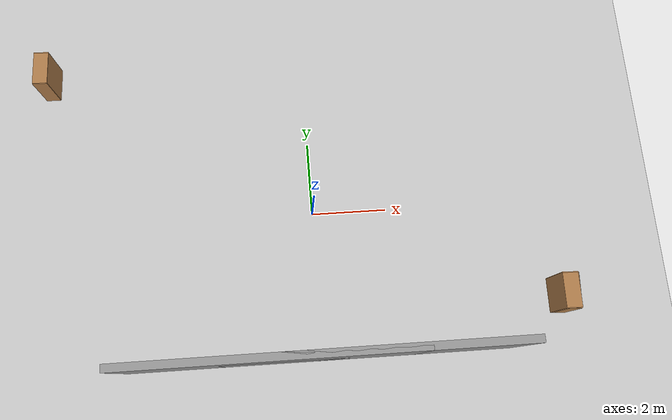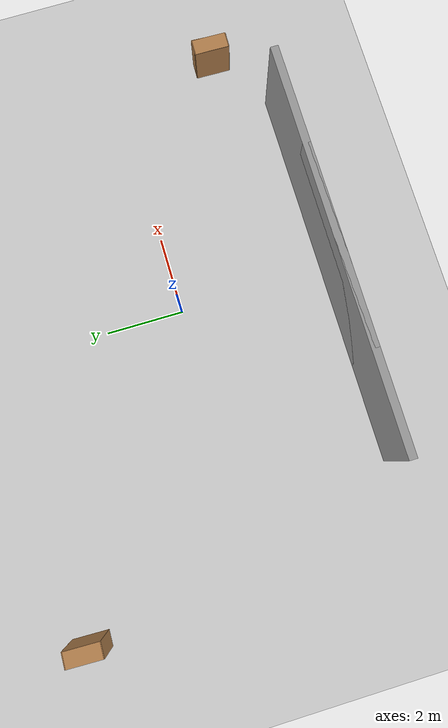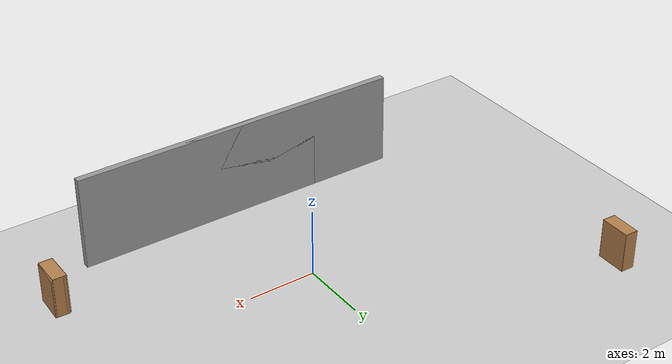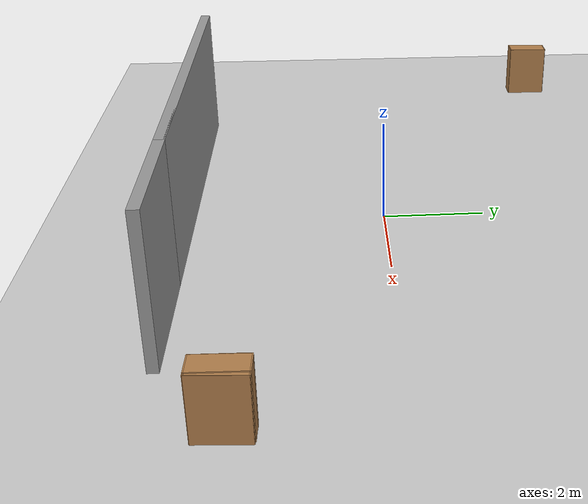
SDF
<sdf version="1.6">
 <world name="default">
  <light name="sun" type="directional">
   <pose>0 0 10 0 -0 0</pose>
   <diffuse>0.8 0.8 0.8 1</diffuse>
   <specular>0.2 0.2 0.2 1</specular>
   <attenuation>
    <range>1000</range>
    <constant>0.9</constant>
    <linear>0.01</linear>
    <quadratic>0.001</quadratic>
   </attenuation>
   <direction>-0.5 0.1 -0.9</direction>
  </light>
  <model name="ground_plane">
   <static>1</static>
   <link name="link">
    <collision name="collision">
     <geometry><plane><normal>0 0 1</normal><size>100 100</size></plane></geometry>
     <surface>
      <contact><collide_bitmask>65535</collide_bitmask></contact>
      <friction><ode><mu>100</mu><mu2>50</mu2></ode></friction>
     </surface>
    </collision>
    <visual name="visual">
     <cast_shadows>0</cast_shadows>
     <geometry><plane><normal>0 0 1</normal><size>100 100</size></plane></geometry>
     <material>
      <script><uri>file://media/materials/scripts/gazebo.material</uri><name>Gazebo/Grey</name></script>
     </material>
    </visual>
   </link>
  </model>
  <physics name="default_physics" default="0" type="ode">
   <real_time_update_rate>1000</real_time_update_rate>
   <max_step_size>0.001</max_step_size>
   <real_time_factor>1</real_time_factor>
   <ode>
    <solver>
     <type>quick</type>
     <iters>150</iters>
     <precon_iters>0</precon_iters>
     <sor>1.4</sor>
     <use_dynamic_moi_rescaling>1</use_dynamic_moi_rescaling>
    </solver>
    <constraints>
     <cfm>1e-05</cfm>
     <erp>0.2</erp>
     <contact_max_correcting_vel>2000</contact_max_correcting_vel>
     <contact_surface_layer>0.01</contact_surface_layer>
    </constraints>
   </ode>
  </physics>
  <scene><ambient>0.4 0.4 0.4 1</ambient><background>0.7 0.7 0.7 1</background><shadows>1</shadows></scene>
  <gravity>0 0 -9.8</gravity>
  <magnetic_field>6e-06 2.3e-05 -4.2e-05</magnetic_field>
  <atmosphere type="adiabatic"/>
  <spherical_coordinates>
   <surface_model>EARTH_WGS84</surface_model>
   <latitude_deg>0</latitude_deg>
   <longitude_deg>0</longitude_deg>
   <elevation>0</elevation>
   <heading_deg>0</heading_deg>
  </spherical_coordinates>
  <model name="grey_wall">
   <static>1</static>
   <link name="link">
    <pose>0 0 1.4 0 -0 0</pose>
    <collision name="collision"><geometry><box><size>7.5 0.2 2.8</size></box></geometry></collision>
    <visual name="visual">
     <cast_shadows>0</cast_shadows>
     <geometry><box><size>7.5 0.2 2.8</size></box></geometry>
     <material>
      <script>
       <uri>model://grey_wall/materials/scripts</uri>
       <uri>model://grey_wall/materials/textures</uri>
       <name>vrc/grey_wall</name>
      </script>
     </material>
    </visual>
   </link>
   <pose>-1.35182 -3.85786 0 0 -0 0</pose>
  </model>
  <model name="grey_wall_0">
   <static>1</static>
   <link name="link">
    <pose>0 0 1.4 0 -0 0</pose>
    <collision name="collision"><geometry><box><size>7.5 0.2 2.8</size></box></geometry></collision>
    <visual name="visual">
     <cast_shadows>0</cast_shadows>
     <geometry><box><size>7.5 0.2 2.8</size></box></geometry>
     <material>
      <script>
       <uri>model://grey_wall/materials/scripts</uri>
       <uri>model://grey_wall/materials/textures</uri>
       <name>vrc/grey_wall</name>
      </script>
     </material>
    </visual>
   </link>
   <pose>1.16682 -3.85786 0 0 -0 0</pose>
  </model>
  <model name="bookshelf_2">
   <static>1</static>
   <link name="link">
    <inertial><mass>1</mass></inertial>
    <collision name="back">
     <pose>0 0.005 0.6 0 -0 0</pose>
     <geometry><box><size>0.9 0.01 1.2</size></box></geometry>
    </collision>
    <visual name="visual1">
     <pose>0 0.005 0.6 0 -0 0</pose>
     <geometry><box><size>0.9 0.01 1.2</size></box></geometry>
     <material>
      <script><uri>file://media/materials/scripts/gazebo.material</uri><name>Gazebo/Wood</name></script>
     </material>
    </visual>
    <collision name="left_side">
     <pose>0.45 -0.195 0.6 0 -0 0</pose>
     <geometry><box><size>0.02 0.4 1.2</size></box></geometry>
    </collision>
    <visual name="visual2">
     <pose>0.45 -0.195 0.6 0 -0 0</pose>
     <geometry><box><size>0.02 0.4 1.2</size></box></geometry>
     <material>
      <script><uri>file://media/materials/scripts/gazebo.material</uri><name>Gazebo/Wood</name></script>
     </material>
    </visual>
    <collision name="right_side">
     <pose>-0.45 -0.195 0.6 0 -0 0</pose>
     <geometry><box><size>0.02 0.4 1.2</size></box></geometry>
    </collision>
    <visual name="visual3">
     <pose>-0.45 -0.195 0.6 0 -0 0</pose>
     <geometry><box><size>0.02 0.4 1.2</size></box></geometry>
     <material>
      <script><uri>file://media/materials/scripts/gazebo.material</uri><name>Gazebo/Wood</name></script>
     </material>
    </visual>
    <collision name="bottom">
     <pose>0 -0.195 0.03 0 -0 0</pose>
     <geometry><box><size>0.88 0.4 0.06</size></box></geometry>
    </collision>
    <visual name="visual4">
     <pose>0 -0.195 0.03 0 -0 0</pose>
     <geometry><box><size>0.88 0.4 0.06</size></box></geometry>
     <material>
      <script><uri>file://media/materials/scripts/gazebo.material</uri><name>Gazebo/Wood</name></script>
     </material>
    </visual>
    <collision name="top">
     <pose>0 -0.195 1.19 0 -0 0</pose>
     <geometry><box><size>0.88 0.4 0.02</size></box></geometry>
    </collision>
    <visual name="visual5">
     <pose>0 -0.195 1.19 0 -0 0</pose>
     <geometry><box><size>0.88 0.4 0.02</size></box></geometry>
     <material>
      <script><uri>file://media/materials/scripts/gazebo.material</uri><name>Gazebo/Wood</name></script>
     </material>
    </visual>
    <collision name="low_shelf">
     <pose>0 -0.195 0.43 0 -0 0</pose>
     <geometry><box><size>0.88 0.4 0.02</size></box></geometry>
    </collision>
    <visual name="visual6">
     <pose>0 -0.195 0.43 0 -0 0</pose>
     <geometry><box><size>0.88 0.4 0.02</size></box></geometry>
     <material>
      <script><uri>file://media/materials/scripts/gazebo.material</uri><name>Gazebo/Wood</name></script>
     </material>
    </visual>
    <collision name="high_shelf">
     <pose>0 -0.195 0.8 0 -0 0</pose>
     <geometry><box><size>0.88 0.4 0.02</size></box></geometry>
    </collision>
    <visual name="visual7">
     <pose>0 -0.195 0.8 0 -0 0</pose>
     <geometry><box><size>0.88 0.4 0.02</size></box></geometry>
     <material>
      <script><uri>file://media/materials/scripts/gazebo.material</uri><name>Gazebo/Wood</name></script>
     </material>
    </visual>
   </link>
   <pose>6.15634 -2.65349 0 0 -0 1.55</pose>
  </model>
  <model name="bookshelf_2_clone">
   <static>1</static>
   <link name="link">
    <inertial><mass>1</mass></inertial>
    <collision name="back">
     <pose>0 0.005 0.6 0 -0 0</pose>
     <geometry><box><size>0.9 0.01 1.2</size></box></geometry>
    </collision>
    <visual name="visual1">
     <pose>0 0.005 0.6 0 -0 0</pose>
     <geometry><box><size>0.9 0.01 1.2</size></box></geometry>
     <material>
      <script><uri>file://media/materials/scripts/gazebo.material</uri><name>Gazebo/Wood</name></script>
     </material>
    </visual>
    <collision name="left_side">
     <pose>0.45 -0.195 0.6 0 -0 0</pose>
     <geometry><box><size>0.02 0.4 1.2</size></box></geometry>
    </collision>
    <visual name="visual2">
     <pose>0.45 -0.195 0.6 0 -0 0</pose>
     <geometry><box><size>0.02 0.4 1.2</size></box></geometry>
     <material>
      <script><uri>file://media/materials/scripts/gazebo.material</uri><name>Gazebo/Wood</name></script>
     </material>
    </visual>
    <collision name="right_side">
     <pose>-0.45 -0.195 0.6 0 -0 0</pose>
     <geometry><box><size>0.02 0.4 1.2</size></box></geometry>
    </collision>
    <visual name="visual3">
     <pose>-0.45 -0.195 0.6 0 -0 0</pose>
     <geometry><box><size>0.02 0.4 1.2</size></box></geometry>
     <material>
      <script><uri>file://media/materials/scripts/gazebo.material</uri><name>Gazebo/Wood</name></script>
     </material>
    </visual>
    <collision name="bottom">
     <pose>0 -0.195 0.03 0 -0 0</pose>
     <geometry><box><size>0.88 0.4 0.06</size></box></geometry>
    </collision>
    <visual name="visual4">
     <pose>0 -0.195 0.03 0 -0 0</pose>
     <geometry><box><size>0.88 0.4 0.06</size></box></geometry>
     <material>
      <script><uri>file://media/materials/scripts/gazebo.material</uri><name>Gazebo/Wood</name></script>
     </material>
    </visual>
    <collision name="top">
     <pose>0 -0.195 1.19 0 -0 0</pose>
     <geometry><box><size>0.88 0.4 0.02</size></box></geometry>
    </collision>
    <visual name="visual5">
     <pose>0 -0.195 1.19 0 -0 0</pose>
     <geometry><box><size>0.88 0.4 0.02</size></box></geometry>
     <material>
      <script><uri>file://media/materials/scripts/gazebo.material</uri><name>Gazebo/Wood</name></script>
     </material>
    </visual>
    <collision name="low_shelf">
     <pose>0 -0.195 0.43 0 -0 0</pose>
     <geometry><box><size>0.88 0.4 0.02</size></box></geometry>
    </collision>
    <visual name="visual6">
     <pose>0 -0.195 0.43 0 -0 0</pose>
     <geometry><box><size>0.88 0.4 0.02</size></box></geometry>
     <material>
      <script><uri>file://media/materials/scripts/gazebo.material</uri><name>Gazebo/Wood</name></script>
     </material>
    </visual>
    <collision name="high_shelf">
     <pose>0 -0.195 0.8 0 -0 0</pose>
     <geometry><box><size>0.88 0.4 0.02</size></box></geometry>
    </collision>
    <visual name="visual7">
     <pose>0 -0.195 0.8 0 -0 0</pose>
     <geometry><box><size>0.88 0.4 0.02</size></box></geometry>
     <material>
      <script><uri>file://media/materials/scripts/gazebo.material</uri><name>Gazebo/Wood</name></script>
     </material>
    </visual>
   </link>
   <pose>6.56568 -2.67349 -0.044293 0 0 -1.62781</pose>
  </model>
  <model name="bookshelf_2_clone_0">
   <static>1</static>
   <link name="link">
    <inertial><mass>1</mass></inertial>
    <collision name="back">
     <pose>0 0.005 0.6 0 -0 0</pose>
     <geometry><box><size>0.9 0.01 1.2</size></box></geometry>
    </collision>
    <visual name="visual1">
     <pose>0 0.005 0.6 0 -0 0</pose>
     <geometry><box><size>0.9 0.01 1.2</size></box></geometry>
     <material>
      <script><uri>file://media/materials/scripts/gazebo.material</uri><name>Gazebo/Wood</name></script>
     </material>
    </visual>
    <collision name="left_side">
     <pose>0.45 -0.195 0.6 0 -0 0</pose>
     <geometry><box><size>0.02 0.4 1.2</size></box></geometry>
    </collision>
    <visual name="visual2">
     <pose>0.45 -0.195 0.6 0 -0 0</pose>
     <geometry><box><size>0.02 0.4 1.2</size></box></geometry>
     <material>
      <script><uri>file://media/materials/scripts/gazebo.material</uri><name>Gazebo/Wood</name></script>
     </material>
    </visual>
    <collision name="right_side">
     <pose>-0.45 -0.195 0.6 0 -0 0</pose>
     <geometry><box><size>0.02 0.4 1.2</size></box></geometry>
    </collision>
    <visual name="visual3">
     <pose>-0.45 -0.195 0.6 0 -0 0</pose>
     <geometry><box><size>0.02 0.4 1.2</size></box></geometry>
     <material>
      <script><uri>file://media/materials/scripts/gazebo.material</uri><name>Gazebo/Wood</name></script>
     </material>
    </visual>
    <collision name="bottom">
     <pose>0 -0.195 0.03 0 -0 0</pose>
     <geometry><box><size>0.88 0.4 0.06</size></box></geometry>
    </collision>
    <visual name="visual4">
     <pose>0 -0.195 0.03 0 -0 0</pose>
     <geometry><box><size>0.88 0.4 0.06</size></box></geometry>
     <material>
      <script><uri>file://media/materials/scripts/gazebo.material</uri><name>Gazebo/Wood</name></script>
     </material>
    </visual>
    <collision name="top">
     <pose>0 -0.195 1.19 0 -0 0</pose>
     <geometry><box><size>0.88 0.4 0.02</size></box></geometry>
    </collision>
    <visual name="visual5">
     <pose>0 -0.195 1.19 0 -0 0</pose>
     <geometry><box><size>0.88 0.4 0.02</size></box></geometry>
     <material>
      <script><uri>file://media/materials/scripts/gazebo.material</uri><name>Gazebo/Wood</name></script>
     </material>
    </visual>
    <collision name="low_shelf">
     <pose>0 -0.195 0.43 0 -0 0</pose>
     <geometry><box><size>0.88 0.4 0.02</size></box></geometry>
    </collision>
    <visual name="visual6">
     <pose>0 -0.195 0.43 0 -0 0</pose>
     <geometry><box><size>0.88 0.4 0.02</size></box></geometry>
     <material>
      <script><uri>file://media/materials/scripts/gazebo.material</uri><name>Gazebo/Wood</name></script>
     </material>
    </visual>
    <collision name="high_shelf">
     <pose>0 -0.195 0.8 0 -0 0</pose>
     <geometry><box><size>0.88 0.4 0.02</size></box></geometry>
    </collision>
    <visual name="visual7">
     <pose>0 -0.195 0.8 0 -0 0</pose>
     <geometry><box><size>0.88 0.4 0.02</size></box></geometry>
     <material>
      <script><uri>file://media/materials/scripts/gazebo.material</uri><name>Gazebo/Wood</name></script>
     </material>
    </visual>
   </link>
   <pose>-6.96781 4.30426 0 0 0 -1.60186</pose>
  </model>
 </world>
</sdf>
